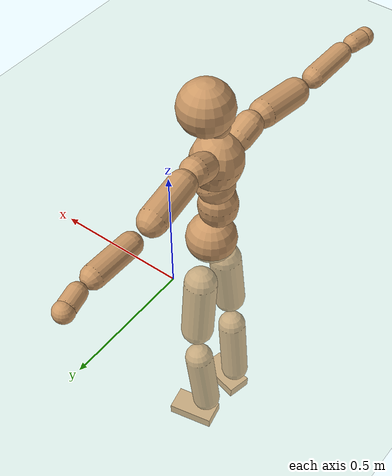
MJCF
<mujoco model="humanoid">
  <compiler coordinate="local"/>
  <default>
    <joint damping="0.0" armature="0.01" stiffness="0.0" limited="true"/>
    <geom conaffinity="1" condim="3" contype="7" margin="0.001" rgba="0.8 0.6 .4 1"/>
  </default>
  <asset>
    <texture type="skybox" builtin="gradient" rgb1=".4 .5 .6" rgb2="0 0 0" width="100" height="100"/>
    <texture builtin="flat" height="1278" mark="cross" markrgb="1 1 1" name="texgeom" random="0.01" rgb1="0.8 0.6 0.4" rgb2="0.8 0.6 0.4" type="cube" width="127"/>
    <texture builtin="checker" height="100" name="texplane" rgb1="0 0 0" rgb2="0.8 0.8 0.8" type="2d" width="100"/>
    <material name="MatPlane" reflectance="0.5" shininess="1" specular="1" texrepeat="60 60" texture="texplane"/>
    <material name="geom" texture="texgeom" texuniform="true"/>
  </asset>
  <worldbody>
    <light cutoff="100" diffuse="1 1 1" dir="-0 0 -1.3" directional="true" exponent="1" pos="0 0 1.3" specular=".1 .1 .1"/>
    <geom conaffinity="1" condim="3" name="floor" pos="0 0 0" rgba="0.8 0.9 0.8 1" size="100 100 .2" type="plane" material="MatPlane"/>
    <body name="Pelvis" pos="-0.0021 -0.2281 0.0299">
      <freejoint name="Pelvis"/>
      <geom type="sphere" contype="1" conaffinity="1" density="500" size="0.0990" pos="0.0000 0.0000 0.0000" name="Pelvis"/>
      <body name="L_Hip" pos="-0.0082 0.0716 -0.0983">
        <joint name="L_Hip_x" type="hinge" pos="0 0 0" axis="1 0 0" stiffness="800" damping="80" armature="0.02" range="-180.0000 180.0000"/>
        <joint name="L_Hip_y" type="hinge" pos="0 0 0" axis="0 1 0" stiffness="800" damping="80" armature="0.02" range="-180.0000 180.0000"/>
        <joint name="L_Hip_z" type="hinge" pos="0 0 0" axis="0 0 1" stiffness="800" damping="80" armature="0.02" range="-180.0000 180.0000"/>
        <geom type="capsule" contype="1" conaffinity="1" density="500" fromto="-0.0001 0.0086 -0.0861 -0.0005 0.0344 -0.3445" size="0.0653" name="L_Hip"/>
        <body name="L_Knee" pos="-0.0007 0.043 -0.4306">
          <joint name="L_Knee_x" type="hinge" pos="0 0 0" axis="1 0 0" stiffness="800" damping="80" armature="0.02" range="-180.0000 180.0000"/>
          <joint name="L_Knee_y" type="hinge" pos="0 0 0" axis="0 1 0" stiffness="800" damping="80" armature="0.02" range="-180.0000 180.0000"/>
          <joint name="L_Knee_z" type="hinge" pos="0 0 0" axis="0 0 1" stiffness="800" damping="80" armature="0.02" range="-180.0000 180.0000"/>
          <geom type="capsule" contype="1" conaffinity="1" density="500" fromto="-0.0096 -0.0032 -0.0931 -0.0385 -0.0126 -0.3724" size="0.0578" name="L_Knee"/>
          <body name="L_Ankle" pos="-0.0481 -0.0158 -0.4655">
            <joint name="L_Ankle_x" type="hinge" pos="0 0 0" axis="1 0 0" stiffness="800" damping="80" armature="0.02" range="-180.0000 180.0000"/>
            <joint name="L_Ankle_y" type="hinge" pos="0 0 0" axis="0 1 0" stiffness="800" damping="80" armature="0.02" range="-180.0000 180.0000"/>
            <joint name="L_Ankle_z" type="hinge" pos="0 0 0" axis="0 0 1" stiffness="800" damping="80" armature="0.02" range="-180.0000 180.0000"/>
            <geom type="box" contype="1" conaffinity="1" density="500" pos="0.0660 0.0139 -0.0318" size="0.094 0.0503 0.0229" quat="0.9947 0.0000 0.0000 0.1033" name="L_Ankle"/>
            <body name="L_Toe" pos="0.132 0.0277 -0.0635">
              <joint name="L_Toe_x" type="hinge" pos="0 0 0" axis="1 0 0" stiffness="500" damping="50" armature="0.02" range="-180.0000 180.0000"/>
              <joint name="L_Toe_y" type="hinge" pos="0 0 0" axis="0 1 0" stiffness="500" damping="50" armature="0.02" range="-180.0000 180.0000"/>
              <joint name="L_Toe_z" type="hinge" pos="0 0 0" axis="0 0 1" stiffness="500" damping="50" armature="0.02" range="-180.0000 180.0000"/>
              <geom type="box" contype="1" conaffinity="1" density="500" pos="0.0000 0.0000 0.0311" size="0.001 0.0025 0.0011" quat="0.9941 0.0000 0.0000 0.1089" name="L_Toe"/>
            </body>
          </body>
        </body>
      </body>
      <body name="R_Hip" pos="-0.0051 -0.0695 -0.0968">
        <joint name="R_Hip_x" type="hinge" pos="0 0 0" axis="1 0 0" stiffness="800" damping="80" armature="0.02" range="-180.0000 180.0000"/>
        <joint name="R_Hip_y" type="hinge" pos="0 0 0" axis="0 1 0" stiffness="800" damping="80" armature="0.02" range="-180.0000 180.0000"/>
        <joint name="R_Hip_z" type="hinge" pos="0 0 0" axis="0 0 1" stiffness="800" damping="80" armature="0.02" range="-180.0000 180.0000"/>
        <geom type="capsule" contype="1" conaffinity="1" density="500" fromto="-0.0013 -0.0095 -0.0881 -0.0053 -0.0381 -0.3524" size="0.0642" name="R_Hip"/>
        <body name="R_Knee" pos="-0.0066 -0.0477 -0.4405">
          <joint name="R_Knee_x" type="hinge" pos="0 0 0" axis="1 0 0" stiffness="800" damping="80" armature="0.02" range="-180.0000 180.0000"/>
          <joint name="R_Knee_y" type="hinge" pos="0 0 0" axis="0 1 0" stiffness="800" damping="80" armature="0.02" range="-180.0000 180.0000"/>
          <joint name="R_Knee_z" type="hinge" pos="0 0 0" axis="0 0 1" stiffness="800" damping="80" armature="0.02" range="-180.0000 180.0000"/>
          <geom type="capsule" contype="1" conaffinity="1" density="500" fromto="-0.0093 0.0037 -0.0931 -0.0374 0.0146 -0.3725" size="0.0577" name="R_Knee"/>
          <body name="R_Ankle" pos="-0.0467 0.0183 -0.4656">
            <joint name="R_Ankle_x" type="hinge" pos="0 0 0" axis="1 0 0" stiffness="800" damping="80" armature="0.02" range="-180.0000 180.0000"/>
            <joint name="R_Ankle_y" type="hinge" pos="0 0 0" axis="0 1 0" stiffness="800" damping="80" armature="0.02" range="-180.0000 180.0000"/>
            <joint name="R_Ankle_z" type="hinge" pos="0 0 0" axis="0 0 1" stiffness="800" damping="80" armature="0.02" range="-180.0000 180.0000"/>
            <geom type="box" contype="1" conaffinity="1" density="500" pos="0.0681 -0.0144 -0.0269" size="0.0955 0.0502 0.0227" quat="0.9946 0.0000 0.0000 -0.1038" name="R_Ankle"/>
            <body name="R_Toe" pos="0.1362 -0.0287 -0.0537">
              <joint name="R_Toe_x" type="hinge" pos="0 0 0" axis="1 0 0" stiffness="500" damping="50" armature="0.02" range="-180.0000 180.0000"/>
              <joint name="R_Toe_y" type="hinge" pos="0 0 0" axis="0 1 0" stiffness="500" damping="50" armature="0.02" range="-180.0000 180.0000"/>
              <joint name="R_Toe_z" type="hinge" pos="0 0 0" axis="0 0 1" stiffness="500" damping="50" armature="0.02" range="-180.0000 180.0000"/>
              <geom type="box" contype="1" conaffinity="1" density="500" pos="0.0000 0.0000 0.0284" size="0.0009 0.0025 0.0012" quat="0.9954 0.0000 0.0000 -0.0954" name="R_Toe"/>
            </body>
          </body>
        </body>
      </body>
      <body name="Torso" pos="-0.0288 -0.0029 0.1175">
        <joint name="Torso_x" type="hinge" pos="0 0 0" axis="1 0 0" stiffness="1000" damping="100" armature="0.02" range="-180.0000 180.0000"/>
        <joint name="Torso_y" type="hinge" pos="0 0 0" axis="0 1 0" stiffness="1000" damping="100" armature="0.02" range="-180.0000 180.0000"/>
        <joint name="Torso_z" type="hinge" pos="0 0 0" axis="0 0 1" stiffness="1000" damping="100" armature="0.02" range="-180.0000 180.0000"/>
        <geom type="capsule" contype="1" conaffinity="1" density="500" fromto="-0.0011 0.0035 0.0882 -0.0007 0.0023 0.0588" size="0.0747" name="Torso"/>
        <body name="Spine" pos="-0.0018 0.0058 0.1469">
          <joint name="Spine_x" type="hinge" pos="0 0 0" axis="1 0 0" stiffness="1000" damping="100" armature="0.02" range="-180.0000 180.0000"/>
          <joint name="Spine_y" type="hinge" pos="0 0 0" axis="0 1 0" stiffness="1000" damping="100" armature="0.02" range="-180.0000 180.0000"/>
          <joint name="Spine_z" type="hinge" pos="0 0 0" axis="0 0 1" stiffness="1000" damping="100" armature="0.02" range="-180.0000 180.0000"/>
          <geom type="capsule" contype="1" conaffinity="1" density="500" fromto="0.0151 0.0008 0.0333 0.0101 0.0006 0.0222" size="0.0732" name="Spine"/>
          <body name="Chest" pos="0.0252 0.0014 0.0555">
            <joint name="Chest_x" type="hinge" pos="0 0 0" axis="1 0 0" stiffness="1000" damping="100" armature="0.02" range="-180.0000 180.0000"/>
            <joint name="Chest_y" type="hinge" pos="0 0 0" axis="0 1 0" stiffness="1000" damping="100" armature="0.02" range="-180.0000 180.0000"/>
            <joint name="Chest_z" type="hinge" pos="0 0 0" axis="0 0 1" stiffness="1000" damping="100" armature="0.02" range="-180.0000 180.0000"/>
            <geom type="capsule" contype="1" conaffinity="1" density="500" fromto="-0.0221 -0.0011 0.0956 -0.0147 -0.0007 0.0637" size="0.0972" name="Chest"/>
            <body name="Neck" pos="-0.0358 -0.0032 0.2268">
              <joint name="Neck_x" type="hinge" pos="0 0 0" axis="1 0 0" stiffness="500" damping="50" armature="0.02" range="-180.0000 180.0000"/>
              <joint name="Neck_y" type="hinge" pos="0 0 0" axis="0 1 0" stiffness="500" damping="50" armature="0.02" range="-180.0000 180.0000"/>
              <joint name="Neck_z" type="hinge" pos="0 0 0" axis="0 0 1" stiffness="500" damping="50" armature="0.02" range="-180.0000 180.0000"/>
              <geom type="capsule" contype="1" conaffinity="1" density="500" fromto="0.0114 0.0013 0.0143 0.0458 0.0052 0.0574" size="0.0439" name="Neck"/>
              <body name="Head" pos="0.0572 0.0065 0.0717">
                <joint name="Head_x" type="hinge" pos="0 0 0" axis="1 0 0" stiffness="500" damping="50" armature="0.02" range="-180.0000 180.0000"/>
                <joint name="Head_y" type="hinge" pos="0 0 0" axis="0 1 0" stiffness="500" damping="50" armature="0.02" range="-180.0000 180.0000"/>
                <joint name="Head_z" type="hinge" pos="0 0 0" axis="0 0 1" stiffness="500" damping="50" armature="0.02" range="-180.0000 180.0000"/>
                <geom type="sphere" contype="1" conaffinity="1" density="500" size="0.1030" pos="0.0000 0.0000 0.0000" name="Head"/>
              </body>
            </body>
            <body name="L_Thorax" pos="-0.0349 0.0766 0.1272">
              <joint name="L_Thorax_x" type="hinge" pos="0 0 0" axis="1 0 0" stiffness="500" damping="50" armature="0.02" range="-180.0000 180.0000"/>
              <joint name="L_Thorax_y" type="hinge" pos="0 0 0" axis="0 1 0" stiffness="500" damping="50" armature="0.02" range="-180.0000 180.0000"/>
              <joint name="L_Thorax_z" type="hinge" pos="0 0 0" axis="0 0 1" stiffness="500" damping="50" armature="0.02" range="-180.0000 180.0000"/>
              <geom type="capsule" contype="1" conaffinity="1" density="500" fromto="-0.0012 0.0176 0.0069 -0.0049 0.0703 0.0275" size="0.0531" name="L_Thorax"/>
              <body name="L_Shoulder" pos="-0.0062 0.0879 0.0343">
                <joint name="L_Shoulder_x" type="hinge" pos="0 0 0" axis="1 0 0" stiffness="500" damping="50" armature="0.02" range="-720.0000 720.0000"/>
                <joint name="L_Shoulder_y" type="hinge" pos="0 0 0" axis="0 1 0" stiffness="500" damping="50" armature="0.02" range="-720.0000 720.0000"/>
                <joint name="L_Shoulder_z" type="hinge" pos="0 0 0" axis="0 0 1" stiffness="500" damping="50" armature="0.02" range="-720.0000 720.0000"/>
                <geom type="capsule" contype="1" conaffinity="1" density="500" fromto="-0.0064 0.0580 -0.0042 -0.0256 0.2320 -0.0166" size="0.0526" name="L_Shoulder"/>
                <body name="L_Elbow" pos="-0.032 0.29 -0.0208">
                  <joint name="L_Elbow_x" type="hinge" pos="0 0 0" axis="1 0 0" stiffness="500" damping="50" armature="0.02" range="-720.0000 720.0000"/>
                  <joint name="L_Elbow_y" type="hinge" pos="0 0 0" axis="0 1 0" stiffness="500" damping="50" armature="0.02" range="-720.0000 720.0000"/>
                  <joint name="L_Elbow_z" type="hinge" pos="0 0 0" axis="0 0 1" stiffness="500" damping="50" armature="0.02" range="-720.0000 720.0000"/>
                  <geom type="capsule" contype="1" conaffinity="1" density="500" fromto="-0.0002 0.0568 0.0025 -0.0008 0.2270 0.0099" size="0.0414" name="L_Elbow"/>
                  <body name="L_Wrist" pos="-0.001 0.2838 0.0124">
                    <joint name="L_Wrist_x" type="hinge" pos="0 0 0" axis="1 0 0" stiffness="300" damping="30" armature="0.02" range="-180.0000 180.0000"/>
                    <joint name="L_Wrist_y" type="hinge" pos="0 0 0" axis="0 1 0" stiffness="300" damping="30" armature="0.02" range="-180.0000 180.0000"/>
                    <joint name="L_Wrist_z" type="hinge" pos="0 0 0" axis="0 0 1" stiffness="300" damping="30" armature="0.02" range="-180.0000 180.0000"/>
                    <geom type="capsule" contype="1" conaffinity="1" density="500" fromto="-0.0033 0.0183 -0.0018 -0.0132 0.0730 -0.0074" size="0.0339" name="L_Wrist"/>
                    <body name="L_Hand" pos="-0.0165 0.0913 -0.0092">
                      <joint name="L_Hand_x" type="hinge" pos="0 0 0" axis="1 0 0" stiffness="300" damping="30" armature="0.02" range="-180.0000 180.0000"/>
                      <joint name="L_Hand_y" type="hinge" pos="0 0 0" axis="0 1 0" stiffness="300" damping="30" armature="0.02" range="-180.0000 180.0000"/>
                      <joint name="L_Hand_z" type="hinge" pos="0 0 0" axis="0 0 1" stiffness="300" damping="30" armature="0.02" range="-180.0000 180.0000"/>
                      <geom type="sphere" contype="1" conaffinity="1" density="500" size="0.0363" pos="0.0000 0.0000 0.0000" name="L_Hand"/>
                    </body>
                  </body>
                </body>
              </body>
            </body>
            <body name="R_Thorax" pos="-0.0398 -0.0788 0.1239">
              <joint name="R_Thorax_x" type="hinge" pos="0 0 0" axis="1 0 0" stiffness="500" damping="50" armature="0.02" range="-180.0000 180.0000"/>
              <joint name="R_Thorax_y" type="hinge" pos="0 0 0" axis="0 1 0" stiffness="500" damping="50" armature="0.02" range="-180.0000 180.0000"/>
              <joint name="R_Thorax_z" type="hinge" pos="0 0 0" axis="0 0 1" stiffness="500" damping="50" armature="0.02" range="-180.0000 180.0000"/>
              <geom type="capsule" contype="1" conaffinity="1" density="500" fromto="-0.0012 -0.0187 0.0070 -0.0050 -0.0749 0.0282" size="0.0519" name="R_Thorax"/>
              <body name="R_Shoulder" pos="-0.0062 -0.0937 0.0352">
                <joint name="R_Shoulder_x" type="hinge" pos="0 0 0" axis="1 0 0" stiffness="500" damping="50" armature="0.02" range="-720.0000 720.0000"/>
                <joint name="R_Shoulder_y" type="hinge" pos="0 0 0" axis="0 1 0" stiffness="500" damping="50" armature="0.02" range="-720.0000 720.0000"/>
                <joint name="R_Shoulder_z" type="hinge" pos="0 0 0" axis="0 0 1" stiffness="500" damping="50" armature="0.02" range="-720.0000 720.0000"/>
                <geom type="capsule" contype="1" conaffinity="1" density="500" fromto="-0.0051 -0.0568 -0.0037 -0.0203 -0.2270 -0.0148" size="0.0538" name="R_Shoulder"/>
                <body name="R_Elbow" pos="-0.0254 -0.2838 -0.0185">
                  <joint name="R_Elbow_x" type="hinge" pos="0 0 0" axis="1 0 0" stiffness="500" damping="50" armature="0.02" range="-720.0000 720.0000"/>
                  <joint name="R_Elbow_y" type="hinge" pos="0 0 0" axis="0 1 0" stiffness="500" damping="50" armature="0.02" range="-720.0000 720.0000"/>
                  <joint name="R_Elbow_z" type="hinge" pos="0 0 0" axis="0 0 1" stiffness="500" damping="50" armature="0.02" range="-720.0000 720.0000"/>
                  <geom type="capsule" contype="1" conaffinity="1" density="500" fromto="-0.0016 -0.0579 0.0018 -0.0064 -0.2316 0.0072" size="0.0414" name="R_Elbow"/>
                  <body name="R_Wrist" pos="-0.008 -0.2895 0.009">
                    <joint name="R_Wrist_x" type="hinge" pos="0 0 0" axis="1 0 0" stiffness="300" damping="30" armature="0.02" range="-180.0000 180.0000"/>
                    <joint name="R_Wrist_y" type="hinge" pos="0 0 0" axis="0 1 0" stiffness="300" damping="30" armature="0.02" range="-180.0000 180.0000"/>
                    <joint name="R_Wrist_z" type="hinge" pos="0 0 0" axis="0 0 1" stiffness="300" damping="30" armature="0.02" range="-180.0000 180.0000"/>
                    <geom type="capsule" contype="1" conaffinity="1" density="500" fromto="-0.0023 -0.0183 -0.0014 -0.0091 -0.0732 -0.0054" size="0.0345" name="R_Wrist"/>
                    <body name="R_Hand" pos="-0.0113 -0.0914 -0.0068">
                      <joint name="R_Hand_x" type="hinge" pos="0 0 0" axis="1 0 0" stiffness="300" damping="30" armature="0.02" range="-180.0000 180.0000"/>
                      <joint name="R_Hand_y" type="hinge" pos="0 0 0" axis="0 1 0" stiffness="300" damping="30" armature="0.02" range="-180.0000 180.0000"/>
                      <joint name="R_Hand_z" type="hinge" pos="0 0 0" axis="0 0 1" stiffness="300" damping="30" armature="0.02" range="-180.0000 180.0000"/>
                      <geom type="sphere" contype="1" conaffinity="1" density="500" size="0.0365" pos="0.0000 0.0000 0.0000" name="R_Hand"/>
                    </body>
                  </body>
                </body>
              </body>
            </body>
          </body>
        </body>
      </body>
    </body>
  </worldbody>
  <actuator>
    <motor name="L_Hip_x" joint="L_Hip_x" gear="500"/>
    <motor name="L_Hip_y" joint="L_Hip_y" gear="500"/>
    <motor name="L_Hip_z" joint="L_Hip_z" gear="500"/>
    <motor name="L_Knee_x" joint="L_Knee_x" gear="500"/>
    <motor name="L_Knee_y" joint="L_Knee_y" gear="500"/>
    <motor name="L_Knee_z" joint="L_Knee_z" gear="500"/>
    <motor name="L_Ankle_x" joint="L_Ankle_x" gear="500"/>
    <motor name="L_Ankle_y" joint="L_Ankle_y" gear="500"/>
    <motor name="L_Ankle_z" joint="L_Ankle_z" gear="500"/>
    <motor name="L_Toe_x" joint="L_Toe_x" gear="500"/>
    <motor name="L_Toe_y" joint="L_Toe_y" gear="500"/>
    <motor name="L_Toe_z" joint="L_Toe_z" gear="500"/>
    <motor name="R_Hip_x" joint="R_Hip_x" gear="500"/>
    <motor name="R_Hip_y" joint="R_Hip_y" gear="500"/>
    <motor name="R_Hip_z" joint="R_Hip_z" gear="500"/>
    <motor name="R_Knee_x" joint="R_Knee_x" gear="500"/>
    <motor name="R_Knee_y" joint="R_Knee_y" gear="500"/>
    <motor name="R_Knee_z" joint="R_Knee_z" gear="500"/>
    <motor name="R_Ankle_x" joint="R_Ankle_x" gear="500"/>
    <motor name="R_Ankle_y" joint="R_Ankle_y" gear="500"/>
    <motor name="R_Ankle_z" joint="R_Ankle_z" gear="500"/>
    <motor name="R_Toe_x" joint="R_Toe_x" gear="500"/>
    <motor name="R_Toe_y" joint="R_Toe_y" gear="500"/>
    <motor name="R_Toe_z" joint="R_Toe_z" gear="500"/>
    <motor name="Torso_x" joint="Torso_x" gear="500"/>
    <motor name="Torso_y" joint="Torso_y" gear="500"/>
    <motor name="Torso_z" joint="Torso_z" gear="500"/>
    <motor name="Spine_x" joint="Spine_x" gear="500"/>
    <motor name="Spine_y" joint="Spine_y" gear="500"/>
    <motor name="Spine_z" joint="Spine_z" gear="500"/>
    <motor name="Chest_x" joint="Chest_x" gear="500"/>
    <motor name="Chest_y" joint="Chest_y" gear="500"/>
    <motor name="Chest_z" joint="Chest_z" gear="500"/>
    <motor name="Neck_x" joint="Neck_x" gear="500"/>
    <motor name="Neck_y" joint="Neck_y" gear="500"/>
    <motor name="Neck_z" joint="Neck_z" gear="500"/>
    <motor name="Head_x" joint="Head_x" gear="500"/>
    <motor name="Head_y" joint="Head_y" gear="500"/>
    <motor name="Head_z" joint="Head_z" gear="500"/>
    <motor name="L_Thorax_x" joint="L_Thorax_x" gear="500"/>
    <motor name="L_Thorax_y" joint="L_Thorax_y" gear="500"/>
    <motor name="L_Thorax_z" joint="L_Thorax_z" gear="500"/>
    <motor name="L_Shoulder_x" joint="L_Shoulder_x" gear="500"/>
    <motor name="L_Shoulder_y" joint="L_Shoulder_y" gear="500"/>
    <motor name="L_Shoulder_z" joint="L_Shoulder_z" gear="500"/>
    <motor name="L_Elbow_x" joint="L_Elbow_x" gear="500"/>
    <motor name="L_Elbow_y" joint="L_Elbow_y" gear="500"/>
    <motor name="L_Elbow_z" joint="L_Elbow_z" gear="500"/>
    <motor name="L_Wrist_x" joint="L_Wrist_x" gear="500"/>
    <motor name="L_Wrist_y" joint="L_Wrist_y" gear="500"/>
    <motor name="L_Wrist_z" joint="L_Wrist_z" gear="500"/>
    <motor name="L_Hand_x" joint="L_Hand_x" gear="500"/>
    <motor name="L_Hand_y" joint="L_Hand_y" gear="500"/>
    <motor name="L_Hand_z" joint="L_Hand_z" gear="500"/>
    <motor name="R_Thorax_x" joint="R_Thorax_x" gear="500"/>
    <motor name="R_Thorax_y" joint="R_Thorax_y" gear="500"/>
    <motor name="R_Thorax_z" joint="R_Thorax_z" gear="500"/>
    <motor name="R_Shoulder_x" joint="R_Shoulder_x" gear="500"/>
    <motor name="R_Shoulder_y" joint="R_Shoulder_y" gear="500"/>
    <motor name="R_Shoulder_z" joint="R_Shoulder_z" gear="500"/>
    <motor name="R_Elbow_x" joint="R_Elbow_x" gear="500"/>
    <motor name="R_Elbow_y" joint="R_Elbow_y" gear="500"/>
    <motor name="R_Elbow_z" joint="R_Elbow_z" gear="500"/>
    <motor name="R_Wrist_x" joint="R_Wrist_x" gear="500"/>
    <motor name="R_Wrist_y" joint="R_Wrist_y" gear="500"/>
    <motor name="R_Wrist_z" joint="R_Wrist_z" gear="500"/>
    <motor name="R_Hand_x" joint="R_Hand_x" gear="500"/>
    <motor name="R_Hand_y" joint="R_Hand_y" gear="500"/>
    <motor name="R_Hand_z" joint="R_Hand_z" gear="500"/>
  </actuator>
  <contact>
    <exclude body1="Torso" body2="Chest"/>
    <exclude body1="Head" body2="Chest"/>
    <exclude body1="R_Knee" body2="R_Toe"/>
    <exclude body1="R_Knee" body2="L_Ankle"/>
    <exclude body1="R_Knee" body2="L_Toe"/>
    <exclude body1="L_Knee" body2="L_Toe"/>
    <exclude body1="L_Knee" body2="R_Ankle"/>
    <exclude body1="L_Knee" body2="R_Toe"/>
    <exclude body1="L_Shoulder" body2="Chest"/>
    <exclude body1="R_Shoulder" body2="Chest"/>
  </contact>
  <sensor/>
  <size njmax="700" nconmax="700"/>
</mujoco>
